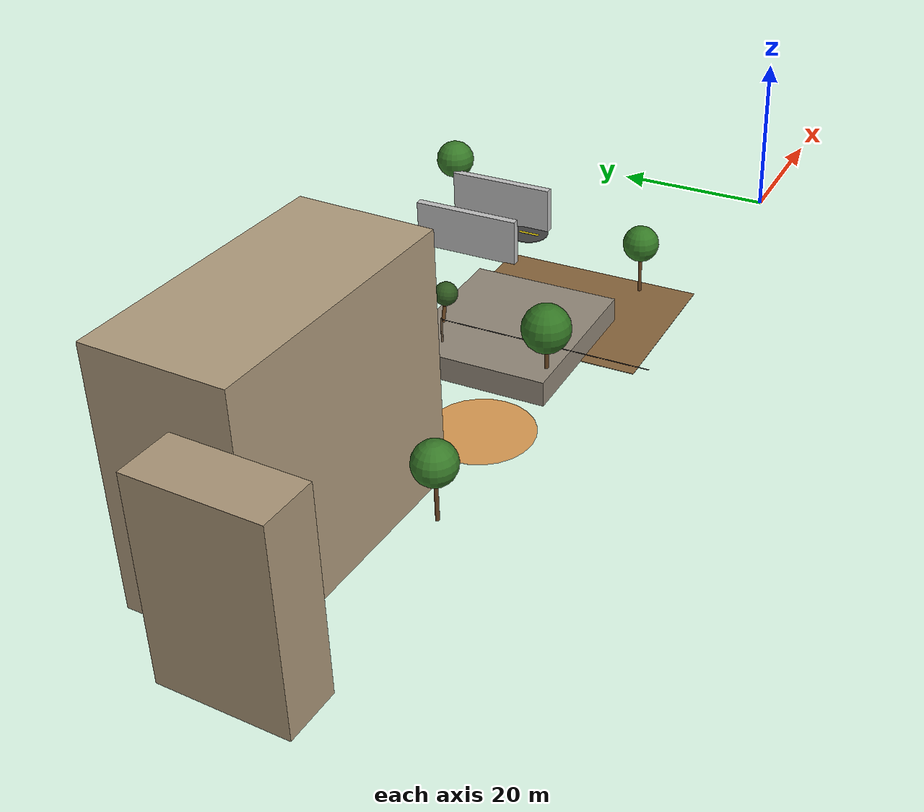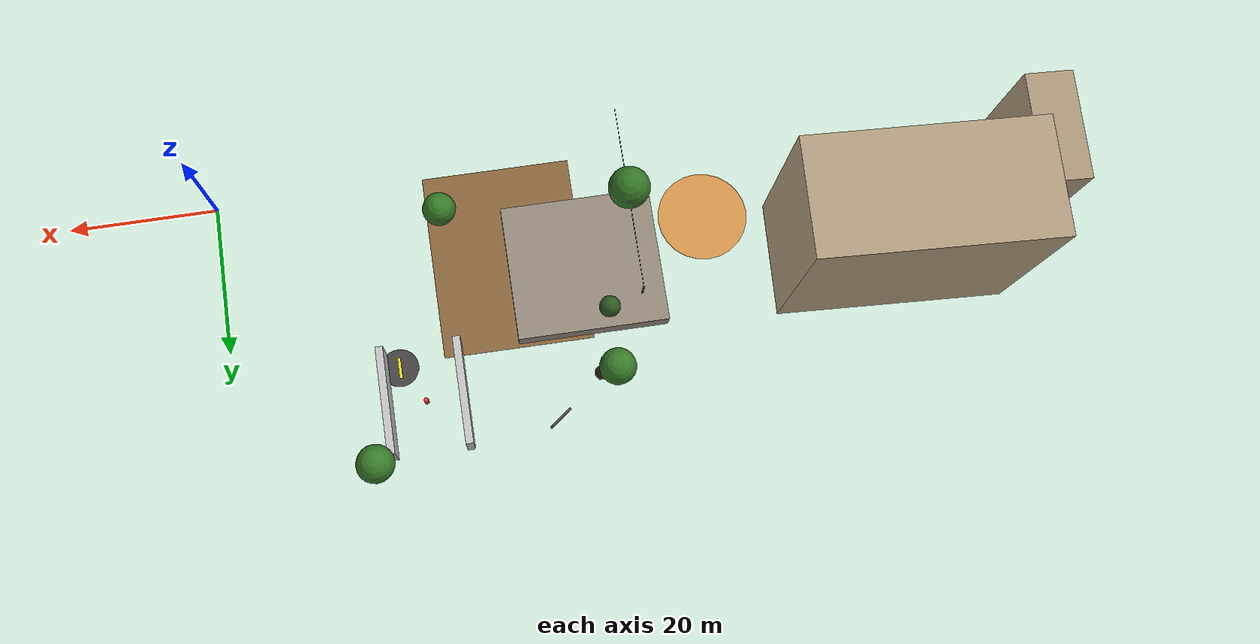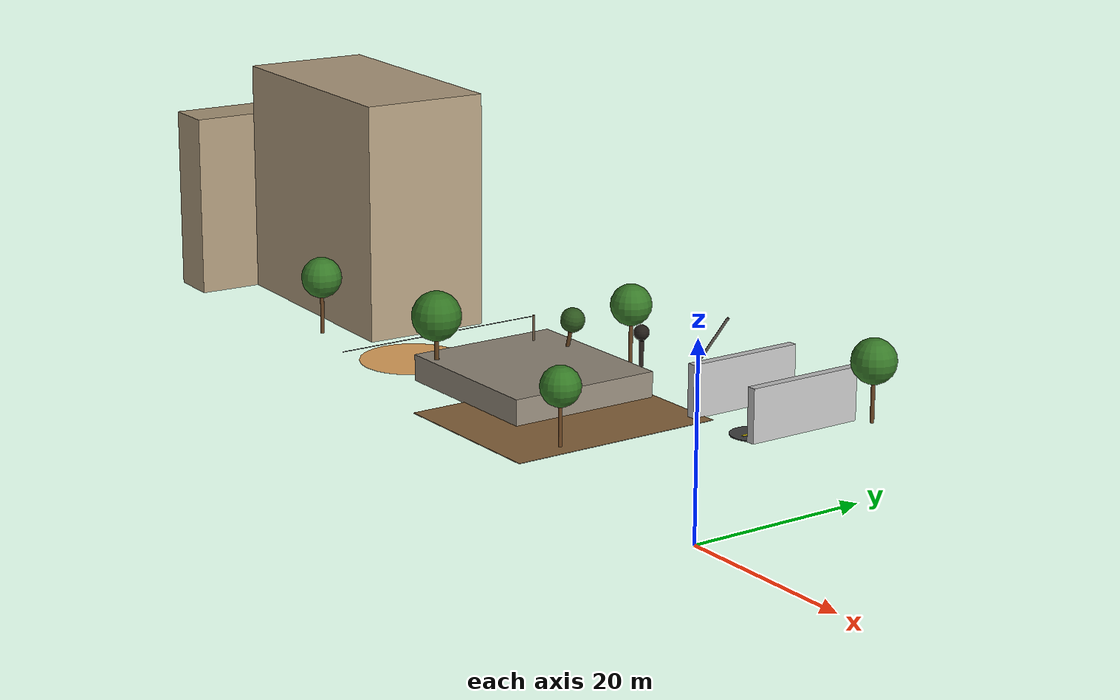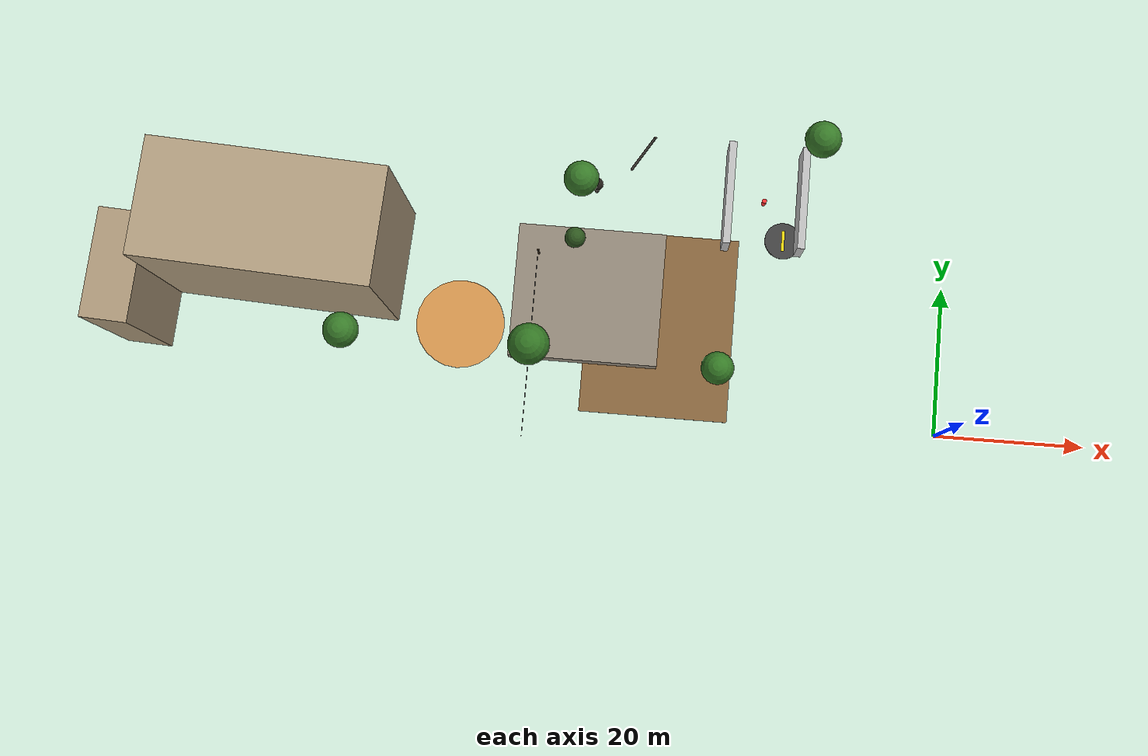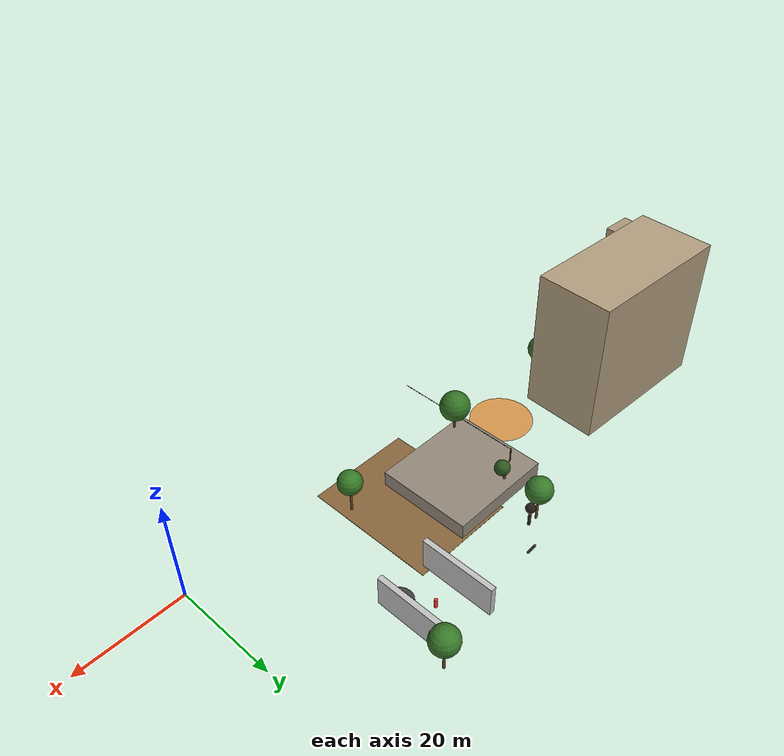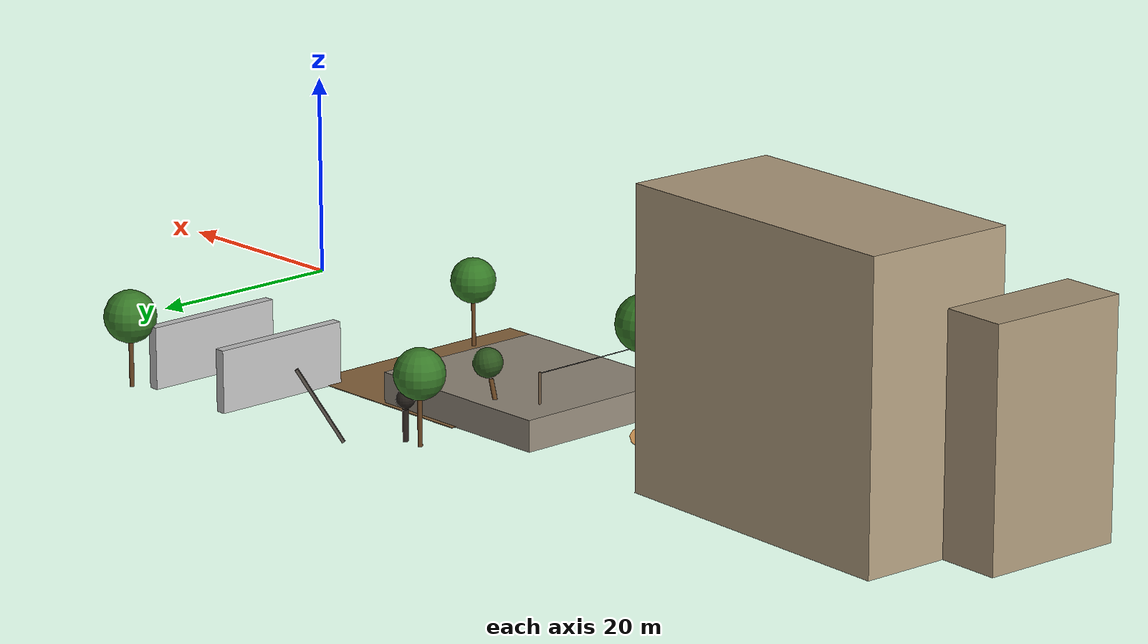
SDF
<sdf version="1.9">
 <world name="p110_world">
  <model name="dirt_blast_w">
   <static>true</static>
   <pose>-38 12 0.05 0 0 0</pose>
   <link name="link">
    <visual name="v">
     <geometry><box><size>20 25 0.06</size></box></geometry>
     <material><ambient>0.46 0.34 0.20 1</ambient><diffuse>0.54 0.40 0.24 1</diffuse></material>
    </visual>
   </link>
  </model>
  <model name="school_w">
   <static>true</static>
   <pose>-88 18 14 0 0 -0.05</pose>
   <link name="link">
    <collision name="c"><geometry><box><size>30 15 28</size></box></geometry></collision>
    <visual name="main">
     <geometry><box><size>30 15 28</size></box></geometry>
     <material>
      <ambient>0.60 0.54 0.44 1</ambient>
      <diffuse>0.70 0.62 0.50 1</diffuse>
      <specular>0.12 0.12 0.10 1</specular>
     </material>
    </visual>
    <visual name="wing">
     <pose>-18 -8 -3 0 0 0</pose>
     <geometry><box><size>6 14 22</size></box></geometry>
     <material><ambient>0.58 0.52 0.42 1</ambient><diffuse>0.68 0.60 0.48 1</diffuse></material>
    </visual>
   </link>
  </model>
  <model name="wall_p1a">
   <static>true</static>
   <pose>-20 30 3 0 0 0</pose>
   <link name="link">
    <collision name="c"><geometry><box><size>1 14 6</size></box></geometry></collision>
    <visual name="v">
     <geometry><box><size>1 14 6</size></box></geometry>
     <material><ambient>0.68 0.68 0.68 1</ambient><diffuse>0.76 0.76 0.76 1</diffuse></material>
    </visual>
   </link>
  </model>
  <model name="wall_p1b">
   <static>true</static>
   <pose>-30 30 3 0 0 0</pose>
   <link name="link">
    <collision name="c"><geometry><box><size>1 14 6</size></box></geometry></collision>
    <visual name="v">
     <geometry><box><size>1 14 6</size></box></geometry>
     <material><ambient>0.68 0.68 0.68 1</ambient><diffuse>0.76 0.76 0.76 1</diffuse></material>
    </visual>
   </link>
  </model>
  <model name="debris_crater">
   <static>true</static>
   <pose>-48 15 1.5 0 0 0</pose>
   <link name="link">
    <collision name="c"><geometry><box><size>20 18 3</size></box></geometry></collision>
    <visual name="v">
     <geometry><box><size>20 18 3</size></box></geometry>
     <material><ambient>0.50 0.47 0.42 1</ambient><diffuse>0.58 0.54 0.48 1</diffuse></material>
    </visual>
   </link>
  </model>
  <model name="beam_1">
   <static>true</static>
   <pose>-42 35 3.0 0 0.55 0.8</pose>
   <link name="link">
    <collision name="c"><geometry><box><size>0.3 0.3 8</size></box></geometry></collision>
    <visual name="v">
     <geometry><box><size>0.3 0.3 8</size></box></geometry>
     <material>
      <ambient>0.28 0.26 0.24 1</ambient>
      <diffuse>0.36 0.33 0.30 1</diffuse>
      <specular>0.45 0.42 0.38 1</specular>
     </material>
    </visual>
   </link>
  </model>
  <model name="tr_ew1">
   <static>true</static>
   <pose>-80 7 0 0 0 0</pose>
   <link name="link">
    <visual name="t">
     <pose>0 0 2.5 0 0 0</pose>
     <geometry><cylinder><radius>0.22</radius><length>5</length></cylinder></geometry>
     <material><ambient>0.34 0.21 0.10 1</ambient><diffuse>0.40 0.26 0.13 1</diffuse></material>
    </visual>
    <visual name="c">
     <pose>0 0 6.8 0 0 0</pose>
     <geometry><sphere><radius>2.4</radius></sphere></geometry>
     <material><ambient>0.18 0.40 0.13 1</ambient><diffuse>0.22 0.48 0.16 1</diffuse></material>
    </visual>
   </link>
  </model>
  <model name="tr_ew2">
   <static>true</static>
   <pose>-55 7 0 0 0 0</pose>
   <link name="link">
    <visual name="t">
     <pose>0 0 3.0 0 0 0</pose>
     <geometry><cylinder><radius>0.25</radius><length>6</length></cylinder></geometry>
     <material><ambient>0.32 0.20 0.10 1</ambient><diffuse>0.38 0.25 0.12 1</diffuse></material>
    </visual>
    <visual name="c">
     <pose>0 0 8.0 0 0 0</pose>
     <geometry><sphere><radius>2.8</radius></sphere></geometry>
     <material><ambient>0.16 0.38 0.11 1</ambient><diffuse>0.20 0.46 0.14 1</diffuse></material>
    </visual>
   </link>
  </model>
  <model name="tr_ew3">
   <static>true</static>
   <pose>-30 6 0 0 0 0</pose>
   <link name="link">
    <visual name="t">
     <pose>0 0 2.5 0 0 0</pose>
     <geometry><cylinder><radius>0.20</radius><length>5</length></cylinder></geometry>
     <material><ambient>0.35 0.22 0.10 1</ambient><diffuse>0.42 0.27 0.13 1</diffuse></material>
    </visual>
    <visual name="c">
     <pose>0 0 6.6 0 0 0</pose>
     <geometry><sphere><radius>2.2</radius></sphere></geometry>
     <material><ambient>0.17 0.40 0.12 1</ambient><diffuse>0.21 0.48 0.15 1</diffuse></material>
    </visual>
   </link>
  </model>
  <model name="tr_court4">
   <static>true</static>
   <pose>-50 30 0 0 0 0</pose>
   <link name="link">
    <visual name="t">
     <pose>0 0 2.5 0 0 0</pose>
     <geometry><cylinder><radius>0.22</radius><length>5</length></cylinder></geometry>
     <material><ambient>0.34 0.21 0.10 1</ambient><diffuse>0.40 0.26 0.13 1</diffuse></material>
    </visual>
    <visual name="c">
     <pose>0 0 6.8 0 0 0</pose>
     <geometry><sphere><radius>2.4</radius></sphere></geometry>
     <material><ambient>0.18 0.40 0.13 1</ambient><diffuse>0.22 0.48 0.16 1</diffuse></material>
    </visual>
   </link>
  </model>
  <model name="tr_court7">
   <static>true</static>
   <pose>-18 38 0 0 0 0</pose>
   <link name="link">
    <visual name="t">
     <pose>0 0 2.5 0 0 0</pose>
     <geometry><cylinder><radius>0.22</radius><length>5</length></cylinder></geometry>
     <material><ambient>0.34 0.21 0.10 1</ambient><diffuse>0.40 0.26 0.13 1</diffuse></material>
    </visual>
    <visual name="c">
     <pose>0 0 6.8 0 0 0</pose>
     <geometry><sphere><radius>2.5</radius></sphere></geometry>
     <material><ambient>0.18 0.40 0.13 1</ambient><diffuse>0.22 0.48 0.16 1</diffuse></material>
    </visual>
   </link>
  </model>
  <model name="tr_burned1">
   <static>true</static>
   <pose>-48 30 1.5 0 0 0</pose>
   <link name="link">
    <collision name="c">
     <geometry><cylinder><radius>0.28</radius><length>3</length></cylinder></geometry>
    </collision>
    <visual name="trunk">
     <geometry><cylinder><radius>0.28</radius><length>3</length></cylinder></geometry>
     <material><ambient>0.12 0.10 0.09 1</ambient><diffuse>0.16 0.13 0.11 1</diffuse></material>
    </visual>
    <visual name="char">
     <pose>0 0 2.5 0 0 0</pose>
     <geometry><sphere><radius>0.9</radius></sphere></geometry>
     <material><ambient>0.10 0.09 0.08 1</ambient><diffuse>0.14 0.12 0.10 1</diffuse></material>
    </visual>
   </link>
  </model>
  <model name="tr_leaning1">
   <static>true</static>
   <pose>-52 22 0 0 0.28 0</pose>
   <link name="link">
    <visual name="t">
     <pose>0 0 2.5 0 0 0</pose>
     <geometry><cylinder><radius>0.22</radius><length>5</length></cylinder></geometry>
     <material><ambient>0.33 0.21 0.10 1</ambient><diffuse>0.40 0.26 0.12 1</diffuse></material>
    </visual>
    <visual name="c">
     <pose>0 0 6.5 0 0 0</pose>
     <geometry><sphere><radius>1.4</radius></sphere></geometry>
     <material><ambient>0.14 0.28 0.10 1</ambient><diffuse>0.18 0.34 0.12 1</diffuse></material>
    </visual>
   </link>
  </model>
  <model name="rt1">
   <static>true</static>
   <pose>-25 30 1.0 0 0 0</pose>
   <link name="link">
    <collision name="c">
     <geometry><cylinder><radius>0.3</radius><length>1.7</length></cylinder></geometry>
    </collision>
    <visual name="v">
     <geometry><cylinder><radius>0.3</radius><length>1.7</length></cylinder></geometry>
     <material><ambient>1.0 0.2 0.2 1</ambient><diffuse>1.0 0.2 0.2 1</diffuse></material>
    </visual>
   </link>
  </model>
  <model name="triage_zone">
   <static>true</static>
   <pose>-65 10 0.05 0 0 0</pose>
   <link name="link">
    <visual name="v">
     <geometry><cylinder><radius>6</radius><length>0.1</length></cylinder></geometry>
     <material><ambient>0.90 0.45 0.05 0.65</ambient><diffuse>0.90 0.45 0.05 0.65</diffuse></material>
    </visual>
   </link>
  </model>
  <model name="cable_pole_3b">
   <static>true</static>
   <pose>-55 20 3.0 0 0 0</pose>
   <link name="link">
    <collision name="c">
     <geometry><cylinder><radius>0.12</radius><length>6</length></cylinder></geometry>
    </collision>
    <visual name="v">
     <geometry><cylinder><radius>0.12</radius><length>6</length></cylinder></geometry>
     <material><ambient>0.35 0.28 0.20 1</ambient><diffuse>0.42 0.34 0.25 1</diffuse></material>
    </visual>
   </link>
  </model>
  <model name="cable_3_5m">
   <static>true</static>
   <pose>-55 7.5 5.9 0 0 0</pose>
   <link name="link">
    <collision name="c"><geometry><box><size>0.05 25 0.05</size></box></geometry></collision>
    <visual name="v">
     <geometry><box><size>0.05 25 0.05</size></box></geometry>
     <material><ambient>0.15 0.15 0.15 1</ambient><diffuse>0.20 0.20 0.20 1</diffuse></material>
    </visual>
   </link>
  </model>
  <model name="lz1">
   <static>true</static>
   <pose>-22 25 0.06 0 0 0</pose>
   <link name="link">
    <visual name="pad">
     <geometry><cylinder><radius>2.5</radius><length>0.10</length></cylinder></geometry>
     <material><ambient>0.20 0.20 0.20 1</ambient><diffuse>0.26 0.26 0.26 1</diffuse></material>
    </visual>
    <visual name="h">
     <pose>0 0 0.06 0 0 0</pose>
     <geometry><box><size>0.4 2.8 0.02</size></box></geometry>
     <material><ambient>0.95 0.85 0.05 1</ambient><diffuse>0.95 0.85 0.05 1</diffuse></material>
    </visual>
   </link>
  </model>
 </world>
</sdf>
